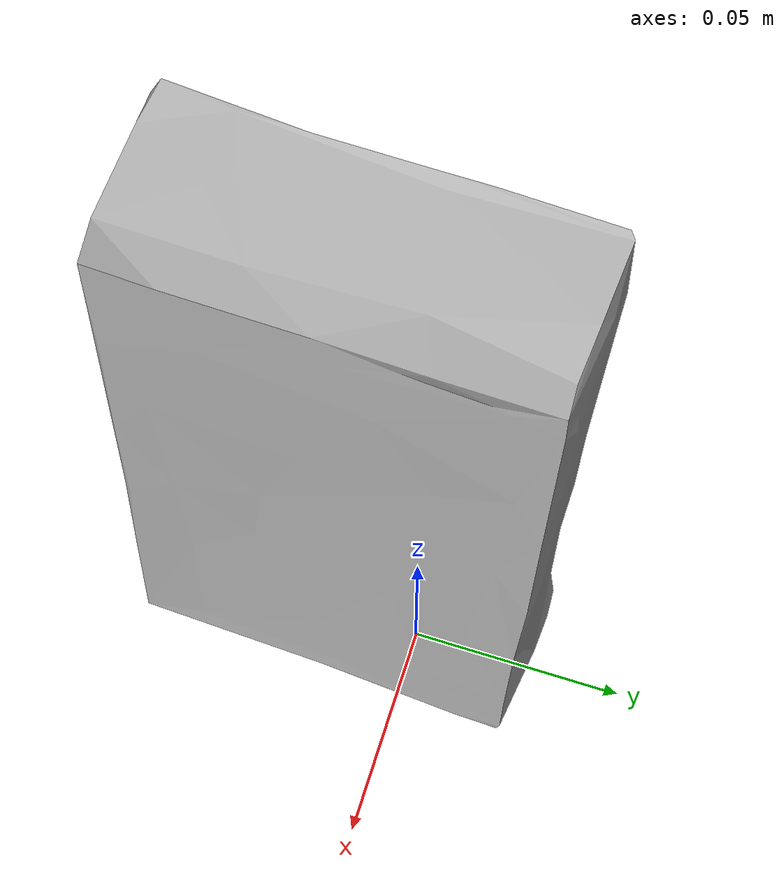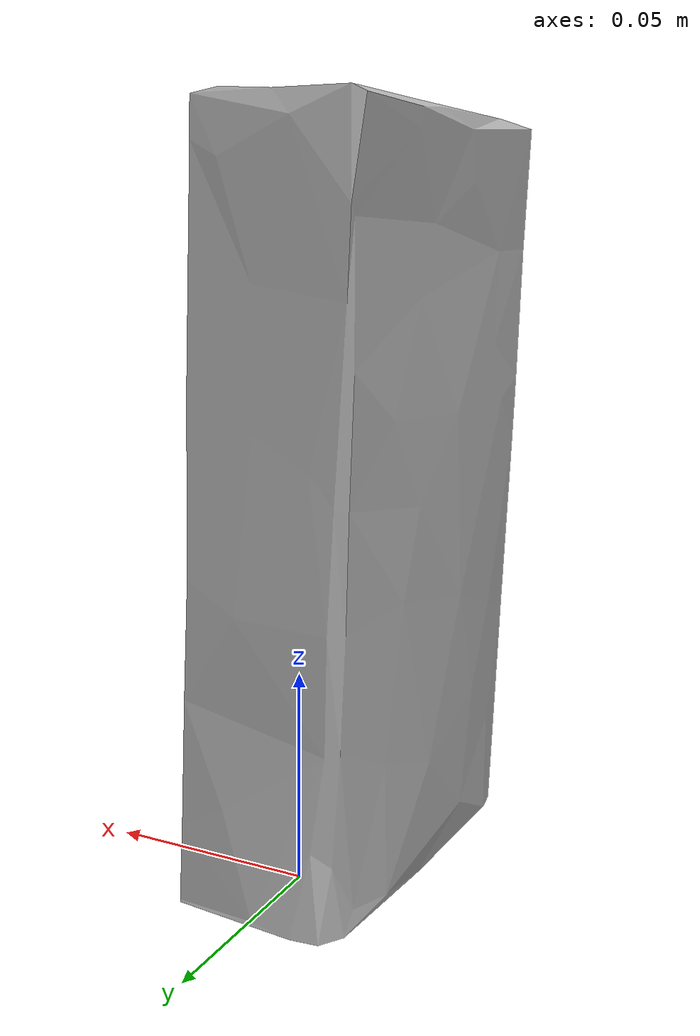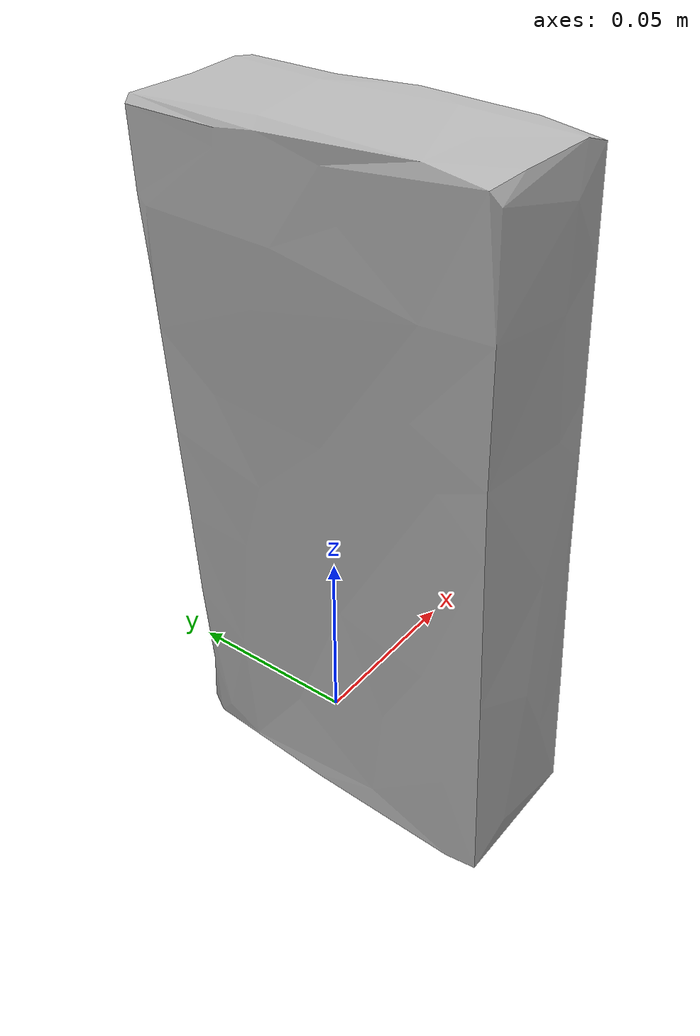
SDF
<?xml version='1.0'?>
<sdf version="1.4">
  <model name="004_sugar_box">
    <static>false</static>
    <link name="link">
      <inertial>
        <pose>-0.007826980030241027 -0.01666194277736016 0.08691282354966258 -3.126966418486167 0.03985546038753903 3.104146132035608</pose>
        <mass>0.06610743559742353</mass>
        <inertia>
          <ixx>0.00021015244106977222</ixx>
          <ixy>1.28094814478947e-21</ixy>
          <ixz>-2.0639614302739598e-20</ixz>
          <iyy>0.00017552638370017448</iyy>
          <iyz>-3.9806955507332005e-20</iyz>
          <izz>5.362326254393528e-05</izz>
        </inertia>
      </inertial>
      <collision name="collision">
        <geometry>
          <mesh>
            <!-- Use a downsampled mesh for collisions -->
            <uri>model:///004_sugar_box/004_sugar_box_250_collision.stl</uri>
	        </mesh>
        </geometry>
        <surface>
      </surface>
      </collision>
      <visual name="visual">
        <geometry>
          <mesh>
            <uri>model:///004_sugar_box/textured.obj</uri>
	        </mesh>
        </geometry>
        <material>
          <script>
            <uri>model:///004_sugar_box/004_sugar_box.material</uri>
            <name>004_sugar_box</name>
          </script>
        </material>
      </visual>
    </link>
  </model>
</sdf>
